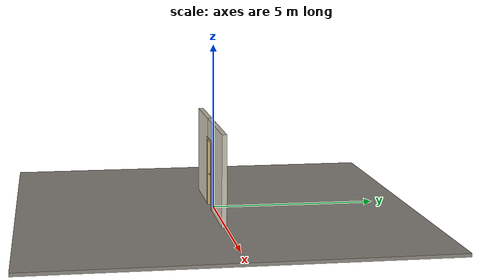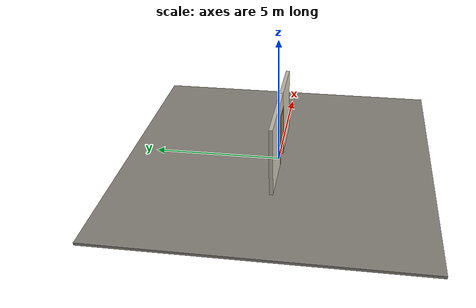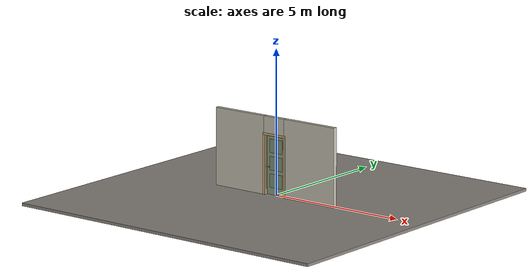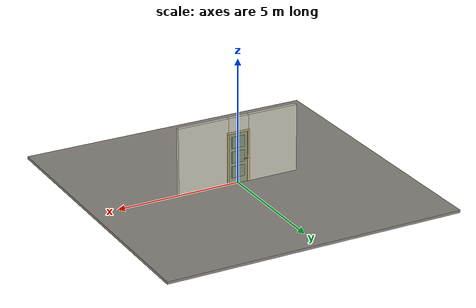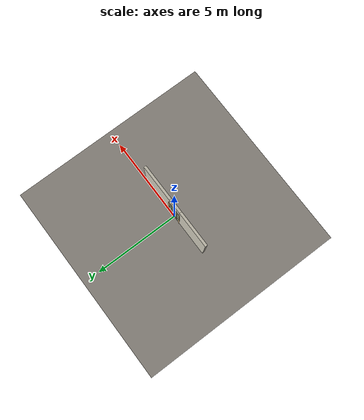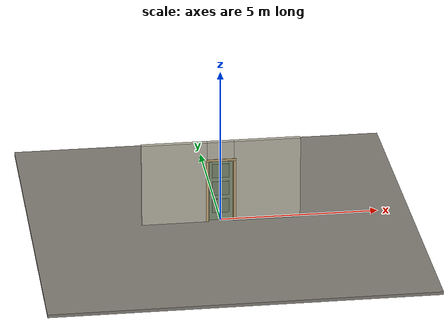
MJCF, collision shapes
<?xml version="1.0" ?>
<mujoco model="db0091_swing_single_full">
  <compiler angle="radian" meshdir="../../hardware" texturedir="../../textures" autolimits="true" inertiafromgeom="false"/>
  <option timestep="0.002" integrator="implicitfast" cone="elliptic" impratio="10" noslip_iterations="3">
    <flag multiccd="enable"/>
  </option>
  <size memory="16M"/>
  <default>
    <geom condim="4" solref="0.005 1" solimp="0.95 0.99 0.001"/>
    <joint solreflimit="0.005 1" solimplimit="0.95 0.99 0.001"/>
    <tendon solreflimit="0.005 1"/>
    <equality solref="0.002 1"/>
  </default>
  <visual>
    <headlight ambient="0.4 0.4 0.4" diffuse="0.7 0.7 0.7" specular="0.2 0.2 0.2"/>
    <quality shadowsize="4096"/>
    <map znear="0.01" zfar="60"/>
  </visual>
  <asset>
    <mesh name="hinge_96510cf394" file="hinge_96510cf394.obj"/>
    <mesh name="hinge_jamb_7fd4ca52b2" file="hinge_jamb_7fd4ca52b2.obj"/>
    <mesh name="lever_748f08efca" file="lever_748f08efca.obj"/>
    <material name="mat_floor" rgba="0.55 0.53 0.5 1" specular="0.2" shininess="0.15" reflectance="0"/>
    <material name="mat_wall" rgba="0.78 0.76 0.7 1" specular="0.2" shininess="0.1" reflectance="0"/>
    <material name="mat_leaf" rgba="0.55 0.62 0.5 1" specular="0.2" shininess="0.53" reflectance="0"/>
    <material name="mat_leaf_panel" rgba="0.506 0.57 0.46 1" specular="0.2" shininess="0.53" reflectance="0"/>
    <material name="mat_hinge" rgba="0.65 0.66 0.68 1" specular="0.74" shininess="0.5" reflectance="0.36"/>
    <material name="mat_op_chrome" rgba="0.9 0.9 0.92 1" specular="0.8" shininess="0.9" reflectance="0.4"/>
    <material name="mat_trim" rgba="0.85 0.66 0.3 1" specular="0.8" shininess="0.75" reflectance="0.4"/>
    <material name="mat_bolt" rgba="0.85 0.66 0.3 1" specular="0.8" shininess="0.75" reflectance="0.4"/>
    <material name="mat_frame" rgba="0.82 0.7 0.5 1" specular="0.2" shininess="0.45" reflectance="0"/>
    <texture name="skybox" type="skybox" builtin="gradient" rgb1="0.6 0.7 0.85" rgb2="0.9 0.92 0.95" width="256" height="256"/>
  </asset>
  <worldbody>
    <light name="sun" pos="1.5 -2.5 4" dir="-0.3 0.5 -0.8" directional="true" diffuse="0.8 0.8 0.8" specular="0.3 0.3 0.3" castshadow="true"/>
    <light name="fill" pos="-1.5 2.5 3" dir="0.3 -0.5 -0.7" directional="true" diffuse="0.35 0.35 0.4" castshadow="false"/>
    <camera name="robot_view" pos="0 -2.590187 1.734312" xyaxes="1 0 0 0 0.26963 0.962964" fovy="52"/>
    <camera name="far_view" pos="0 2.494187 1.734312" xyaxes="-1 0 0 0 -0.26963 0.962964" fovy="52"/>
    <camera name="iso" pos="-1.932062 -2.183438 2.141063" xyaxes="0.741536 -0.670913 0 0.242917 0.268487 0.932151" fovy="46"/>
    <camera name="detail_handle" pos="-0.0509 -0.8725 1.245" xyaxes="0.97561 0.219512 0 -0.070934 0.315262 0.94635" fovy="38"/>
    <geom name="floor" type="box" size="6 6 0.05" pos="0 0 -0.05" material="mat_floor" group="0" contype="1" conaffinity="1" friction="0.8 0.005 0.0001" density="2400"/>
    <geom name="wall_left" type="box" size="1.03325 0.0725 1.35" pos="-1.46675 -0.048 1.35" material="mat_wall" group="0" contype="1" conaffinity="1" friction="0.6 0.005 0.0001" density="800"/>
    <geom name="wall_right" type="box" size="1.04825 0.0725 1.35" pos="1.45175 -0.048 1.35" material="mat_wall" group="0" contype="1" conaffinity="1" friction="0.6 0.005 0.0001" density="800"/>
    <geom name="wall_header" type="box" size="0.4185 0.0725 0.303" pos="-0.015 -0.048 2.397" material="mat_wall" group="0" contype="1" conaffinity="1" friction="0.6 0.005 0.0001" density="800"/>
    <geom name="hinge_0_jamb" type="mesh" mesh="hinge_jamb_7fd4ca52b2" pos="0.3815 0.0245 0.259" quat="0 0 0 1" material="mat_hinge" group="1" contype="0" conaffinity="0" density="7850"/>
    <geom name="hinge_1_jamb" type="mesh" mesh="hinge_jamb_7fd4ca52b2" pos="0.3815 0.0245 1.025" quat="0 0 0 1" material="mat_hinge" group="1" contype="0" conaffinity="0" density="7850"/>
    <geom name="hinge_2_jamb" type="mesh" mesh="hinge_jamb_7fd4ca52b2" pos="0.3815 0.0245 1.861" quat="0 0 0 1" material="mat_hinge" group="1" contype="0" conaffinity="0" density="7850"/>
    <geom name="jamb_hinge" type="box" size="0.0095 0.0725 1.0225" pos="0.394 -0.048 1.0225" material="mat_frame" group="0" contype="1" conaffinity="1" friction="0.6 0.005 0.0001" density="400"/>
    <geom name="strike_965_wall_n" type="box" size="0.0245 0.056325 0.0167" pos="-0.409 -0.064175 0.965" material="mat_frame" group="0" contype="1" conaffinity="1" friction="0.6 0.005 0.0001" density="400"/>
    <geom name="strike_965_wall_p" type="box" size="0.0245 0.008 0.0167" pos="-0.409 0.01585 0.965" material="mat_frame" group="0" contype="1" conaffinity="1" friction="0.6 0.005 0.0001" density="400"/>
    <geom name="strike_965_ramp" type="box" size="0.0245 0.01649 0.0167" pos="-0.413636 0.028673 0.965" quat="0.977148 0 0 0.212558" material="mat_frame" group="0" contype="1" conaffinity="1" friction="0.12 0.005 0.0001" density="400"/>
    <geom name="strike_965_back" type="box" size="0.01615 0.00785 0.0167" pos="-0.41735 0 0.965" material="mat_frame" group="0" contype="1" conaffinity="1" friction="0.6 0.005 0.0001" density="400"/>
    <geom name="jamb_strike_0" type="box" size="0.0245 0.0725 0.47415" pos="-0.409 -0.048 0.47415" material="mat_frame" group="0" contype="1" conaffinity="1" friction="0.6 0.005 0.0001" density="400"/>
    <geom name="jamb_strike_1" type="box" size="0.0245 0.0725 0.53165" pos="-0.409 -0.048 1.51335" material="mat_frame" group="0" contype="1" conaffinity="1" friction="0.6 0.005 0.0001" density="400"/>
    <geom name="jamb_head" type="box" size="0.4185 0.0725 0.0095" pos="-0.015 -0.048 2.0545" material="mat_frame" group="0" contype="1" conaffinity="1" friction="0.6 0.005 0.0001" density="400"/>
    <geom name="head_stud" type="box" size="0.4185 0.0725 0.015" pos="-0.015 -0.048 2.079" material="mat_wall" group="0" contype="1" conaffinity="1" friction="0.6 0.005 0.0001" density="500"/>
    <geom name="stop_hinge" type="box" size="0.0055 0.016 1.0225" pos="0.379 -0.034 1.0225" material="mat_frame" group="0" contype="1" conaffinity="1" friction="0.6 0.005 0.0001" density="400"/>
    <geom name="stop_strike" type="box" size="0.0055 0.016 1.0225" pos="-0.379 -0.034 1.0225" material="mat_frame" group="0" contype="1" conaffinity="1" friction="0.6 0.005 0.0001" density="400"/>
    <geom name="stop_head" type="box" size="0.3845 0.016 0.0055" pos="0 -0.034 2.0395" material="mat_frame" group="0" contype="1" conaffinity="1" friction="0.6 0.005 0.0001" density="400"/>
    <geom name="casing_l_n" type="box" size="0.035 0.008 1.032" pos="-0.4335 -0.1285 1.0225" material="mat_frame" group="2" contype="0" conaffinity="0" density="400"/>
    <geom name="casing_r_n" type="box" size="0.035 0.008 1.032" pos="0.4335 -0.1285 1.0225" material="mat_frame" group="2" contype="0" conaffinity="0" density="400"/>
    <geom name="casing_h_n" type="box" size="0.4685 0.008 0.035" pos="0 -0.1285 2.094" material="mat_frame" group="2" contype="0" conaffinity="0" density="400"/>
    <geom name="casing_l_p" type="box" size="0.035 0.008 1.032" pos="-0.4335 0.0325 1.0225" material="mat_frame" group="2" contype="0" conaffinity="0" density="400"/>
    <geom name="casing_r_p" type="box" size="0.035 0.008 1.032" pos="0.4335 0.0325 1.0225" material="mat_frame" group="2" contype="0" conaffinity="0" density="400"/>
    <geom name="casing_h_p" type="box" size="0.4685 0.008 0.035" pos="0 0.0325 2.094" material="mat_frame" group="2" contype="0" conaffinity="0" density="400"/>
    <site name="approach_point" pos="0 -1.5 0" quat="1 0 0 0" size="0.05" rgba="0.2 0.9 0.2 0.5" group="4"/>
    <site name="goal_point" pos="0 1.5 0" quat="1 0 0 0" size="0.05" rgba="0.2 0.9 0.2 0.5" group="4"/>
    <site name="door_plane_center" pos="0 0 1.0225" quat="1 0 0 0" size="0.02" rgba="0.2 0.9 0.2 0.5" group="4"/>
    <body name="leaf" pos="0.3845 0 0">
      <inertial pos="-0.37981 0.000166 1.025258" mass="36.271963" quat="0.499777 0.500406 -0.499588 0.500228" diaginertia="1.799398921 12.514136561 14.305904744"/>
      <joint name="leaf_hinge" type="hinge" axis="0 0 -1" pos="-0.003 0.0245 0" limited="true" range="0 1.745329" damping="0.173726" frictionloss="7.155478" armature="0.02"/>
      <geom name="leaf_slab" type="box" size="0.381 0.0175 1.016" pos="-0.384 0 1.025" material="mat_leaf" group="0" contype="1" conaffinity="1" friction="0.4 0.005 0.0001" density="1"/>
      <geom name="leaf_panel_0_n" type="box" size="0.271 0.003 0.23448" pos="-0.384 -0.0205 0.487" material="mat_leaf_panel" group="1" contype="0" conaffinity="0" density="1"/>
      <geom name="leaf_panel_0_p" type="box" size="0.271 0.003 0.23448" pos="-0.384 0.0205 0.487" material="mat_leaf_panel" group="1" contype="0" conaffinity="0" density="1"/>
      <geom name="leaf_panel_1_n" type="box" size="0.271 0.003 0.23448" pos="-0.384 -0.0205 1.08596" material="mat_leaf_panel" group="1" contype="0" conaffinity="0" density="1"/>
      <geom name="leaf_panel_1_p" type="box" size="0.271 0.003 0.23448" pos="-0.384 0.0205 1.08596" material="mat_leaf_panel" group="1" contype="0" conaffinity="0" density="1"/>
      <geom name="leaf_panel_2_n" type="box" size="0.271 0.003 0.23448" pos="-0.384 -0.0205 1.68492" material="mat_leaf_panel" group="1" contype="0" conaffinity="0" density="1"/>
      <geom name="leaf_panel_2_p" type="box" size="0.271 0.003 0.23448" pos="-0.384 0.0205 1.68492" material="mat_leaf_panel" group="1" contype="0" conaffinity="0" density="1"/>
      <geom name="hinge_0" type="mesh" mesh="hinge_96510cf394" pos="-0.003 0.0245 0.259" quat="0 0 0 1" material="mat_hinge" group="1" contype="0" conaffinity="0" density="7850"/>
      <geom name="hinge_1" type="mesh" mesh="hinge_96510cf394" pos="-0.003 0.0245 1.025" quat="0 0 0 1" material="mat_hinge" group="1" contype="0" conaffinity="0" density="7850"/>
      <geom name="hinge_2" type="mesh" mesh="hinge_96510cf394" pos="-0.003 0.0245 1.861" quat="0 0 0 1" material="mat_hinge" group="1" contype="0" conaffinity="0" density="7850"/>
      <geom name="leaf_latch_bolt_faceplate" type="box" size="0.0006 0.01235 0.0267" pos="-0.7644 0 0.965" material="mat_bolt" group="1" contype="0" conaffinity="0" density="8500"/>
      <site name="leaf_edge_mid" pos="-0.765 0 1.016" quat="1 0 0 0" size="0.02" rgba="0.2 0.9 0.2 0.5" group="4"/>
      <body name="leaf_handle" pos="-0.705 0 0.965">
        <inertial pos="0.024186 -0.000772 0" mass="0.847837" quat="0.70377 0 0 -0.710427" diaginertia="0.001187205 0.002868554 0.003918928"/>
        <joint name="leaf_handle_hinge" type="hinge" axis="0 1 0" limited="true" range="0 0.87" damping="0.205085" frictionloss="0.04" stiffness="0.9" springref="-0.444444" armature="0.01"/>
        <geom name="leaf_handle_spindle" type="cylinder" size="0.006 0.0255" pos="0 0 0" quat="0.707107 -0.707107 0 0" material="mat_op_chrome" group="1" contype="0" conaffinity="0" density="7850"/>
        <geom name="leaf_handle_lever_n" type="mesh" mesh="lever_748f08efca" pos="0 -0.0175 0" quat="0 0 -0.707107 0.707107" material="mat_op_chrome" group="1" contype="0" conaffinity="0" density="3000"/>
        <geom name="leaf_handle_lever_col_n" type="capsule" size="0.008 0.048" pos="0.056 -0.0725 0" quat="0.707107 0 0.707107 0" material="mat_op_chrome" group="3" contype="1" conaffinity="1" rgba="0.8 0.3 0.3 0.25" friction="0.7 0.01 0.0001" density="3000"/>
        <geom name="leaf_handle_hub_col_n" type="cylinder" size="0.012 0.022" pos="0 -0.0475 0" quat="0.707107 -0.707107 0 0" material="mat_op_chrome" group="3" contype="1" conaffinity="1" rgba="0.8 0.3 0.3 0.25" friction="0.6 0.005 0.0001" density="3000"/>
        <geom name="leaf_handle_turn_button_n" type="cylinder" size="0.006 0.005" pos="0 -0.0815 0" quat="0.707107 -0.707107 0 0" material="mat_trim" group="1" contype="0" conaffinity="0" density="7100"/>
        <geom name="leaf_handle_lever_p" type="mesh" mesh="lever_748f08efca" pos="0 0.0175 0" quat="0 0 0.707107 0.707107" material="mat_op_chrome" group="1" contype="0" conaffinity="0" density="3000"/>
        <geom name="leaf_handle_lever_col_p" type="capsule" size="0.008 0.048" pos="0.056 0.0725 0" quat="0.707107 0 0.707107 0" material="mat_op_chrome" group="3" contype="1" conaffinity="1" rgba="0.8 0.3 0.3 0.25" friction="0.7 0.01 0.0001" density="3000"/>
        <geom name="leaf_handle_hub_col_p" type="cylinder" size="0.012 0.022" pos="0 0.0475 0" quat="0.707107 -0.707107 0 0" material="mat_op_chrome" group="3" contype="1" conaffinity="1" rgba="0.8 0.3 0.3 0.25" friction="0.6 0.005 0.0001" density="3000"/>
        <site name="leaf_handle_grip_n" pos="0.0896 -0.0725 0" quat="1 0 0 0" size="0.012" rgba="0.2 0.9 0.2 0.5" group="4"/>
        <site name="leaf_handle_grip_p" pos="0.0896 0.0725 0" quat="1 0 0 0" size="0.012" rgba="0.2 0.9 0.2 0.5" group="4"/>
      </body>
      <body name="leaf_latch_bolt" pos="-0.765 0 0.965">
        <inertial pos="0.00865 0 0" mass="0.041419" quat="0.92388 0.382683 0 0" diaginertia="0.000000798 0.000005598 0.000005598"/>
        <joint name="leaf_latch_bolt_slide" type="slide" axis="1 0 0" limited="true" range="0 0.0127" damping="2" frictionloss="0.3" stiffness="300" springref="-0.008333" armature="0.1"/>
        <geom name="leaf_latch_bolt_capsule" type="capsule" size="0.00635 0.015" pos="0.00865 0 0" quat="0.707107 0 -0.707107 0" material="mat_bolt" group="0" contype="1" conaffinity="1" friction="0.2 0.005 0.0001" density="8500"/>
      </body>
    </body>
  </worldbody>
  <tendon>
    <fixed name="leaf_latch_bolt_coupling" limited="true" range="0 10">
      <joint joint="leaf_latch_bolt_slide" coef="1"/>
      <joint joint="leaf_handle_hinge" coef="-0.016076"/>
    </fixed>
  </tendon>
  <sensor>
    <jointpos name="leaf_hinge_pos" joint="leaf_hinge"/>
    <jointvel name="leaf_hinge_vel" joint="leaf_hinge"/>
    <jointpos name="leaf_handle_hinge_pos" joint="leaf_handle_hinge"/>
    <jointvel name="leaf_handle_hinge_vel" joint="leaf_handle_hinge"/>
    <jointpos name="leaf_latch_bolt_slide_pos" joint="leaf_latch_bolt_slide"/>
    <jointvel name="leaf_latch_bolt_slide_vel" joint="leaf_latch_bolt_slide"/>
  </sensor>
</mujoco>
